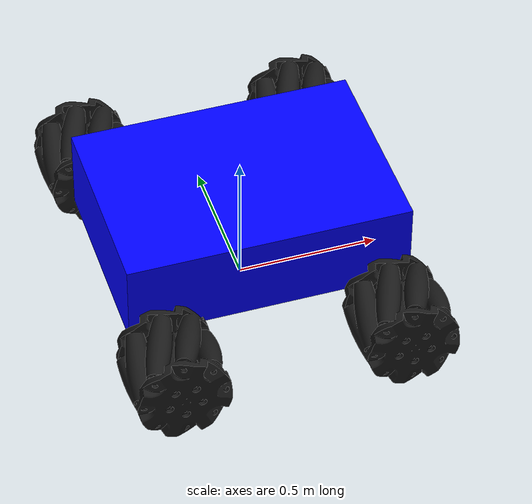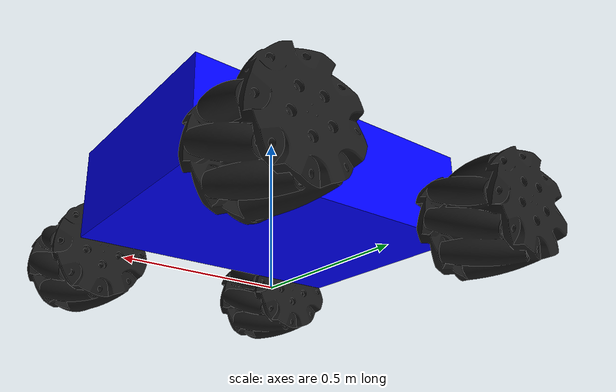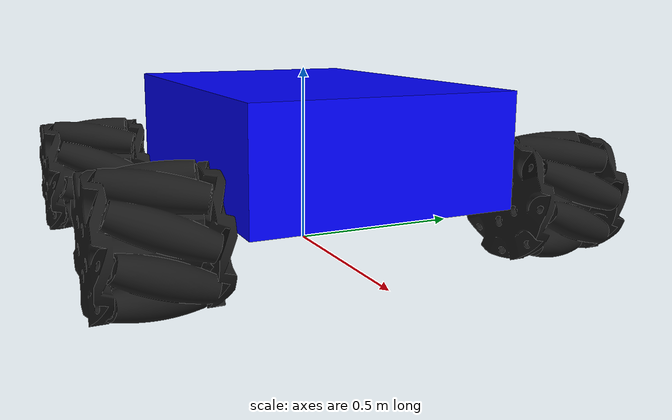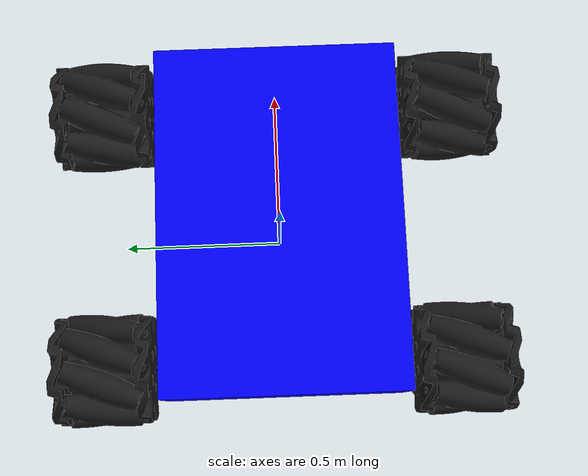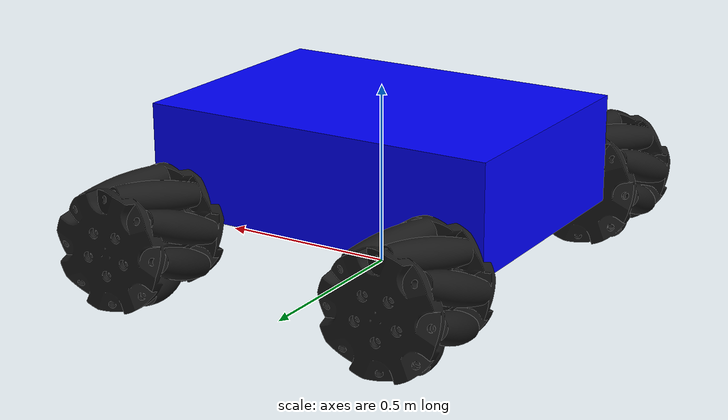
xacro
<?xml version="1.0"?>
<robot xmlns:xacro="http://www.ros.org/wiki/xacro" name="mecanum_robot">

  <!-- ====== PARAMETRELER ====== -->
  <!-- Gövde boyutları (m) -->
  <xacro:property name="body_length" value="1.0"/>   <!-- x: 100 cm -->
  <xacro:property name="body_width"  value="0.7"/>   <!-- y: 70 cm  -->
  <xacro:property name="body_height" value="0.3"/>   <!-- z: 30 cm -->

  <!-- Tekerlek boyutları (m) -->
  <xacro:property name="wheel_radius" value="0.1625"/>   <!-- 325 mm çap -->
  <xacro:property name="wheel_width"  value="0.09"/>

  <!-- STL global scale -->
  <xacro:property name="wheel_scale" value="0.01"/>

  <!-- Gövdeden tekerlere uzaklık -->
  <xacro:property name="wheel_offset_x" value="${body_length/2 - 0.10}"/>
  <xacro:property name="wheel_offset_y" value="${body_width/2 + wheel_width/2}"/>

  <!-- Kütleler -->
  <xacro:property name="body_mass"  value="20.0"/>
  <xacro:property name="wheel_mass" value="1.0"/>

  <!-- Gövdenin yerden yüksekliği -->
  <xacro:property name="body_z" value="${wheel_radius + body_height/2}"/>

  <!-- STL yolları (SAĞ / SOL ayrıldı) -->
  <xacro:property name="wheel_mesh_right"
                  value="package://mecanum_robot_description/meshes/mecanum_wheel_right.stl"/>
  <xacro:property name="wheel_mesh_left"
                  value="package://mecanum_robot_description/meshes/mecanum_wheel_left.stl"/>

  <!-- ====== GÖVDE: base_link ====== -->
  <link name="base_link">
    <inertial>
      <origin xyz="0 0 ${body_z}" rpy="0 0 0"/>
      <mass value="${body_mass}"/>
      <inertia
        ixx="${1.0/12.0 * body_mass * (body_height*body_height + body_width*body_width)}"
        iyy="${1.0/12.0 * body_mass * (body_height*body_height + body_length*body_length)}"
        izz="${1.0/12.0 * body_mass * (body_length*body_length + body_width*body_width)}"
        ixy="0" ixz="0" iyz="0"/>
    </inertial>

    <visual>
      <origin xyz="0 0 ${body_z}" rpy="0 0 0"/>
      <geometry>
        <box size="${body_length} ${body_width} ${body_height}"/>
      </geometry>
      <material name="blue">
        <color rgba="0 0 1 1"/>
      </material>
    </visual>

    <collision>
      <origin xyz="0 0 ${body_z}" rpy="0 0 0"/>
      <geometry>
        <box size="${body_length} ${body_width} ${body_height}"/>
      </geometry>
    </collision>
  </link>

  <!-- ====== TEKER MACROSU ====== -->
  <!-- mesh: hangi STL kullanılacak (sağ / sol) -->
  <xacro:macro name="mecanum_wheel" params="name parent x y z mesh">
    <link name="${name}">
      <inertial>
        <origin xyz="0 0 0" rpy="0 0 0"/>
        <mass value="${wheel_mass}"/>
        <inertia
          ixx="${1.0/12.0*wheel_mass*(3*wheel_radius*wheel_radius + wheel_width*wheel_width)}"
          iyy="${1.0/2.0*wheel_mass*wheel_radius*wheel_radius}"
          izz="${1.0/12.0*wheel_mass*(3*wheel_radius*wheel_radius + wheel_width*wheel_width)}"
          ixy="0" ixz="0" iyz="0"/>
      </inertial>

      <visual>
        <origin xyz="0 0 0" rpy="0 0 0"/>
        <geometry>
          <mesh filename="${mesh}"
                scale="${wheel_scale} ${wheel_scale} ${wheel_scale}"/>
        </geometry>
        <material name="black">
          <color rgba="0.1 0.1 0.1 1"/>
        </material>
      </visual>

      <collision>
        <origin xyz="0 0 0" rpy="0 0 0"/>
        <geometry>
          <mesh filename="${mesh}"
                scale="${wheel_scale} ${wheel_scale} ${wheel_scale}"/>
        </geometry>
      </collision>
    </link>

    <joint name="${name}_joint" type="continuous">
      <parent link="${parent}"/>
      <child  link="${name}"/>
      <origin xyz="${x} ${y} ${z}" rpy="0 0 0"/>
      <!-- Hepsi için dönme ekseni Y -->
      <axis xyz="0 1 0"/>
      <limit effort="10" velocity="20"/>
      <dynamics friction="0.0" damping="0.0"/>
    </joint>
  </xacro:macro>

  <!-- ====== 4 TEKER ====== -->
  <!-- SOL tekerler  : wheel_mesh_left -->
  <!-- SAĞ tekerler  : wheel_mesh_right -->

  <!-- Ön Sol (x+, y+) -->
  <xacro:mecanum_wheel
    name="wheel_fl"
    parent="base_link"
    x="${ wheel_offset_x}"
    y="${ wheel_offset_y}"
    z="${wheel_radius}"
    mesh="${wheel_mesh_left}"/>

  <!-- Ön Sağ (x+, y-) -->
  <xacro:mecanum_wheel
    name="wheel_fr"
    parent="base_link"
    x="${ wheel_offset_x}"
    y="-${wheel_offset_y}"
    z="${wheel_radius}"
    mesh="${wheel_mesh_right}"/>

  <!-- Arka Sol (x-, y+) -->
  <xacro:mecanum_wheel
    name="wheel_rl"
    parent="base_link"
    x="-${wheel_offset_x}"
    y="${ wheel_offset_y}"
    z="${wheel_radius}"
    mesh="${wheel_mesh_left}"/>

  <!-- Arka Sağ (x-, y-) -->
  <xacro:mecanum_wheel
    name="wheel_rr"
    parent="base_link"
    x="-${wheel_offset_x}"
    y="-${wheel_offset_y}"
    z="${wheel_radius}"
    mesh="${wheel_mesh_right}"/>

</robot>
